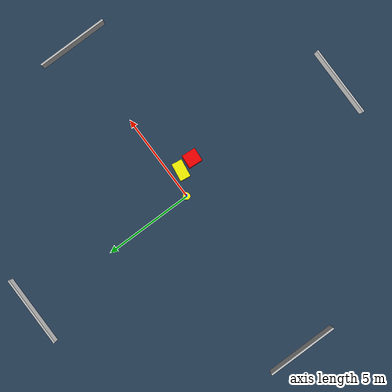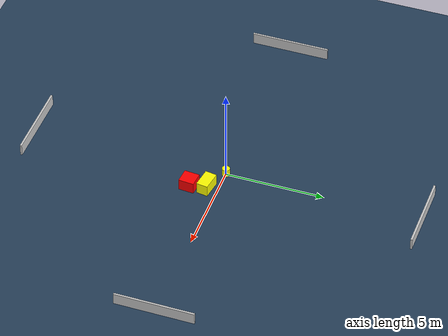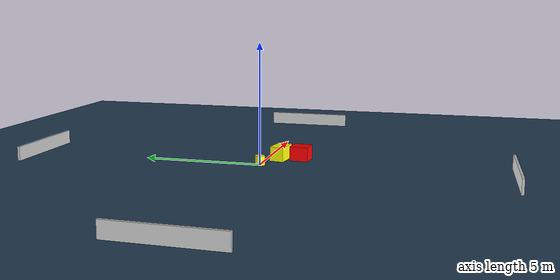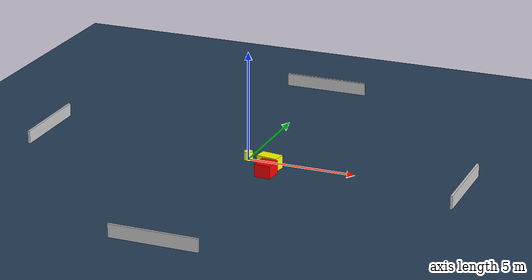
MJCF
<?xml version="1.0" ?>
<mujoco model="generated_environment">
  <option timestep="0.01" integrator="RK4" cone="elliptic"/>
  <default>
    <geom density="1"/>
  </default>
  <asset>
    <texture builtin="gradient" height="3072" name="skybox" rgb1="0.3 0.5 0.7" rgb2="0 0 0" type="skybox" width="512"/>
    <texture builtin="checker" height="300" name="groundplane" rgb1="0.2 0.3 0.4" rgb2="0.1 0.2 0.3" type="2d" width="300"/>
    <material name="groundplane" reflectance="0.2" texrepeat="5 5" texture="groundplane"/>
  </asset>
  <worldbody>
    <light dir="0 0 -1" directional="true" pos="0 0 1.5"/>
    <geom condim="3" friction="0.5 0.005 0.001" material="groundplane" name="floor" pos="0 0 0" size="0 0 0.05" type="plane"/>
    <body name="walls">
      <geom name="wall_1" condim="4" pos="-10.0 0.0 0.3" rgba="0.800000011920929 0.800000011920929 0.800000011920929 1.0" size="0.05 2.0 0.3" type="box"/>
      <geom name="wall_2" condim="4" pos="10.0 0.0 0.3" rgba="0.800000011920929 0.800000011920929 0.800000011920929 1.0" size="0.05 2.0 0.3" type="box"/>
      <geom name="wall_3" condim="4" pos="0.0 -10.0 0.3" rgba="0.800000011920929 0.800000011920929 0.800000011920929 1.0" size="2.0 0.05 0.3" type="box"/>
      <geom name="wall_4" condim="4" pos="0.0 10.0 0.3" rgba="0.800000011920929 0.800000011920929 0.800000011920929 1.0" size="2.0 0.05 0.3" type="box"/>
    </body>
    <body name="robot">
      <joint name="joint_x" type="slide" pos="0 0 0" axis="1 0 0"/>
      <joint name="joint_y" type="slide" pos="0 0 0" axis="0 1 0"/>
      <geom name="robot" type="cylinder" pos="0.0 0.0 0.2" size="0.2 0.2 0.0" mass="5.0" friction="1.0 0.005 0.0001" condim="4" rgba="1.0 1.0 0.0 1.0"/>
    </body>
    <body name="obstacle_1_movable">
      <geom name="obstacle_1_movable" condim="4" pos="1.2462449343893982 -0.5663101018921708 0.3" euler="0 0 171.76063418741703" friction="0.0 0.005 0.001" rgba="1.0 1.0 0.0 1.0" size="0.4920104132102872 0.29352341918176383 0.3" type="box" mass="0.1"/>
      <joint type="free"/>
    </body>
    <body name="obstacle_2_static">
      <geom name="obstacle_2_static" condim="4" pos="1.410833337582613 -1.4069364479061586 0.3" euler="0 0 355.74599699327047" friction="0.0 0.005 0.001" rgba="1.0 0.0 0.0 1.0" size="0.37270706069525783 0.391040727344786 0.3" type="box"/>
    </body>
  </worldbody>
  <actuator>
    <motor name="actuator_x" joint="joint_x" gear="1" ctrlrange="-1 1"/>
    <motor name="actuator_y" joint="joint_y" gear="1" ctrlrange="-1 1"/>
  </actuator>
</mujoco>
